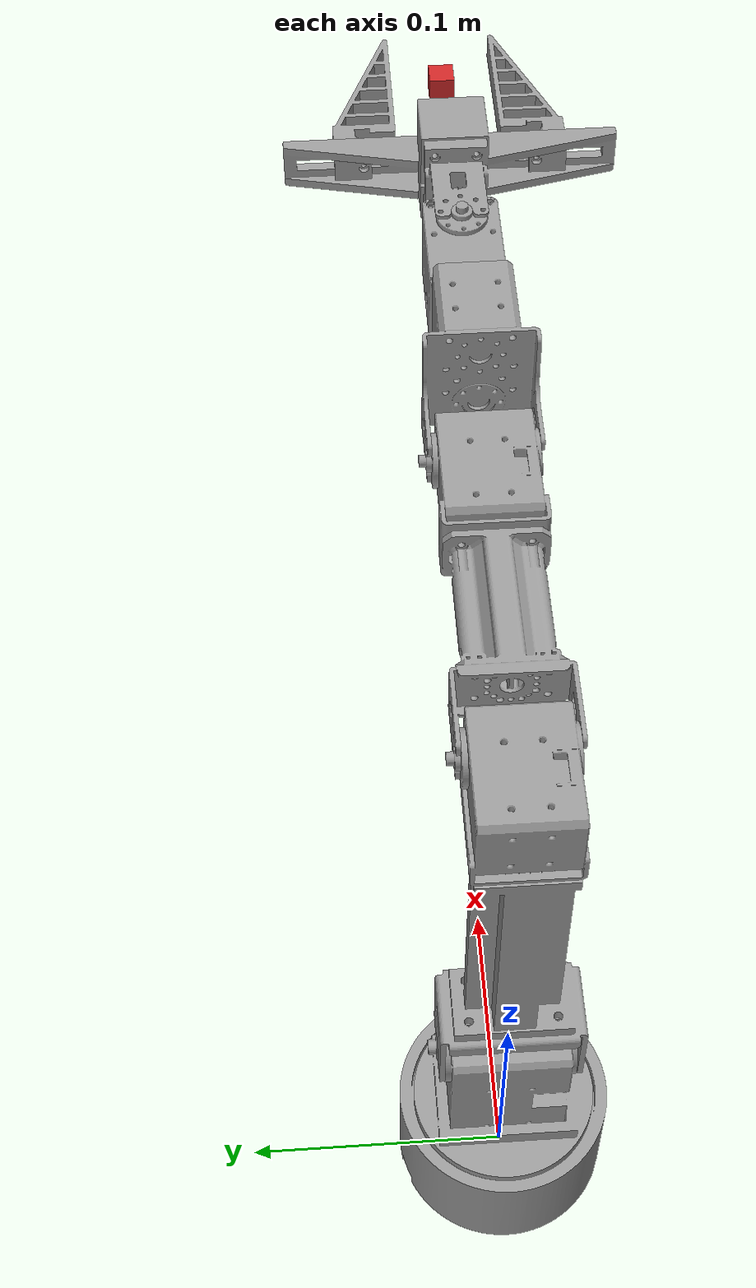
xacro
<?xml version="1.0"?>
<!-- Open_Manipulator Chain -->
<robot xmlns:xacro="http://ros.org/wiki/xacro" name="om">

  <link name="world"/>

  <joint name="world_joint" type="fixed">
    <origin xyz="0 0.0 0.0" rpy="0 0 0"/>
    <parent link="world"/>
    <child link="link1"/>
  </joint>

  <!-- Link 1 -->
  <link name="link1">
    <visual>
      <origin xyz="0 0 0" rpy="0 0 0"/>
      <geometry>
        <mesh filename="package://om_urdf/meshes/stl/chain_link1.stl" scale="0.001 0.001 0.001"/>
      </geometry>
      <material name="grey"/>
    </visual>

    <collision>
      <origin xyz="0 0 0" rpy="0 0 0"/>
      <geometry>
        <mesh filename="package://om_urdf/meshes/stl/chain_link1.stl" scale="0.001 0.001 0.001"/>
      </geometry>
    </collision>

    <inertial>
      <origin xyz="3.0876154e-04 0.0000000e+00 -1.2176461e-04" />
      <mass value="7.9119962e-02" />
      <inertia ixx="1.2505234e-05" ixy="0.0" ixz="-1.7855208e-07"
               iyy="2.1898364e-05" iyz="0.0"
               izz="1.9267361e-05" />
    </inertial>
  </link>

  <!-- Joint 1 -->
  <joint name="joint1" type="revolute">
    <parent link="link1"/>
    <child link="link2"/>
    <origin xyz="0.0 0.0 0.036" rpy="0 0 0"/>
    <axis xyz="0 0 1"/>
    <limit velocity="4.8" effort="1" lower="${-pi*0.9}" upper="${pi*0.9}" />
  </joint>

  <!--  Link 2 -->
  <link name="link2">
    <visual>
      <origin xyz="0 0 0.0" rpy="0 0 0"/>
      <geometry>
        <mesh filename="package://om_urdf/meshes/stl/chain_link2.stl" scale="0.001 0.001 0.001"/>
      </geometry>
      <material name="grey"/>
    </visual>

    <collision>
      <origin xyz="0 0 0.0" rpy="0 0 0"/>
      <geometry>
        <mesh filename="package://om_urdf/meshes/stl/chain_link2.stl" scale="0.001 0.001 0.001"/>
      </geometry>
    </collision>

    <inertial>
      <origin xyz="-3.0184870e-04 5.4043684e-04 ${0.018 + 2.9433464e-02}" />
      <mass value="9.8406837e-02" />
      <inertia ixx="3.4543422e-05" ixy="-1.6031095e-08" ixz="-3.8375155e-07"
               iyy="3.2689329e-05" iyz="2.8511935e-08"
               izz="1.8850320e-05" />
    </inertial>
  </link>

  <!--  Joint 2 -->
  <joint name="joint2" type="revolute">
    <parent link="link2"/>
    <child link="link3"/>
    <origin xyz="0.0 0.0 0.05675" rpy="0 0 0"/>
    <axis xyz="0 1 0"/>
    <limit velocity="4.8" effort="1" lower="${-pi*0.57}" upper="${pi*0.5}" />
  </joint>

  <!--  Link 3 -->
  <link name="link3">
    <visual>
      <origin xyz="0 0 0" rpy="0 0 0"/>
      <geometry>
        <mesh filename="package://om_urdf/meshes/stl/chain_link3.stl" scale="0.001 0.001 0.001"/>
      </geometry>
      <material name="grey"/>
    </visual>

    <collision>
      <origin xyz="0 0 0" rpy="0 0 0"/>
      <geometry>
        <mesh filename="package://om_urdf/meshes/stl/chain_link3.stl" scale="0.001 0.001 0.001"/>
      </geometry>
    </collision>

    <inertial>
      <origin xyz="1.0308393e-02 3.7743363e-04 1.0170197e-01" />
      <mass value="1.3850917e-01" />
      <inertia ixx="3.3055381e-04" ixy="-9.7940978e-08" ixz="-3.8505711e-05"
               iyy="3.4290447e-04" iyz="-1.5717516e-06"
               izz="6.0346498e-05" />
    </inertial>
  </link>

  <!--  Joint 3 -->
  <joint name="joint3" type="revolute">
    <parent link="link3"/>
    <child link="link4"/>
    <origin xyz="0.024 0 0.161714" rpy="0 0 0"/>
    <axis xyz="0 1 0"/>
    <limit velocity="4.8" effort="1" lower="${-pi*0.57}" upper="${pi*0.44}" />
  </joint>

  <!--  Link 4 -->
  <link name="link4">
    <visual>
      <origin xyz="0 0 0" rpy="0 0 0"/>
      <geometry>
        <mesh filename="package://om_urdf/meshes/stl/chain_link4.stl" scale="0.001 0.001 0.001"/>
      </geometry>
      <material name="grey"/>
    </visual>

    <collision>
      <origin xyz="0 0 0" rpy="0 0 0"/>
      <geometry>
        <mesh filename="package://om_urdf/meshes/stl/chain_link4.stl" scale="0.001 0.001 0.001"/>
      </geometry>
    </collision>

    <inertial>
      <origin xyz="9.0909590e-02 3.8929816e-04 2.2413279e-04" />
      <mass value="1.3274562e-01" />
      <inertia ixx="3.0654178e-05" ixy="-1.2764155e-06" ixz="-2.6874417e-07"
               iyy="2.4230292e-04" iyz="1.1559550e-08"
               izz="2.5155057e-04" />
    </inertial>
  </link>

  <!--  Joint 4 -->
  <joint name="joint4" type="revolute">
    <parent link="link4"/>
    <child link="link5"/>
    <origin xyz="0.1235 0.0 0.0" rpy="0 0 0"/>
    <axis xyz="0 1 0"/>
    <limit velocity="4.8" effort="1" lower="${-pi*0.57}" upper="${pi*0.65}" />
  </joint>

  <!--  Link 5 -->
  <link name="link5">
    <visual>
      <origin xyz="0 0 0" rpy="0 0 0"/>
      <geometry>
        <mesh filename="package://om_urdf/meshes/stl/chain_link5.stl" scale="0.001 0.001 0.001"/>
      </geometry>
      <material name="grey"/>
    </visual>

    <collision>
      <origin xyz="0 0 0" rpy="0 0 0"/>
      <geometry>
        <mesh filename="package://om_urdf/meshes/stl/chain_link5.stl" scale="0.001 0.001 0.001"/>
      </geometry>
    </collision>

    <inertial>
      <origin xyz="0 0 0" />
      <mass value="1.0e-03" />
      <inertia ixx="1.0e-03" ixy="0.0" ixz="0.0"
               iyy="1.0e-03" iyz="0.0"
               izz="1.0e-03" />
    </inertial>
  </link>

  <!--  Joint 5 -->
  <joint name="joint5" type="revolute">
    <parent link="link5"/>
    <child link="link6"/>
    <origin xyz="0.064 0.0 0.0" rpy="0 0 0"/>
    <axis xyz="1 0 0"/>
    <limit velocity="4.8" effort="1" lower="${-pi}" upper="${pi}" />
  </joint>

  <!--  Link 6 -->
  <link name="link6">
    <visual>
      <origin xyz="0 0 0" rpy="0 0 0"/>
      <geometry>
        <mesh filename="package://om_urdf/meshes/stl/chain_link6.stl" scale="0.001 0.001 0.001"/>
      </geometry>
      <material name="grey"/>
    </visual>

    <collision>
      <origin xyz="0 0 0" rpy="0 0 0"/>
      <geometry>
        <mesh filename="package://om_urdf/meshes/stl/chain_link6.stl" scale="0.001 0.001 0.001"/>
      </geometry>
    </collision>

    <inertial>
      <origin xyz="0 0 0" />
      <mass value="1.0e-03" />
      <inertia ixx="1.0e-03" ixy="0.0" ixz="0.0"
               iyy="1.0e-03" iyz="0.0"
               izz="1.0e-03" />
    </inertial>
  </link>

  <!--  Joint 6 -->
  <joint name="joint6" type="revolute">
    <parent link="link6"/>
    <child link="link7"/>
    <origin xyz="0.0405 0.0 0.0" rpy="0 0 0"/>
    <axis xyz="0 0 1"/>
    <limit velocity="4.8" effort="1" lower="${-pi*0.57}" upper="${pi*0.57}" />
  </joint>

  <!--  Link 7 -->
  <link name="link7">
    <visual>
      <origin xyz="0 0 0" rpy="0 0 0"/>
      <geometry>
        <mesh filename="package://om_urdf/meshes/stl/chain_link7_without_grippers.stl" scale="0.001 0.001 0.001"/>
      </geometry>
      <material name="grey"/>
    </visual>

    <collision>
      <origin xyz="0 0 0" rpy="0 0 0"/>
      <geometry>
        <mesh filename="package://om_urdf/meshes/stl/chain_link7_without_grippers.stl" scale="0.001 0.001 0.001"/>
      </geometry>
    </collision>

    <inertial>
      <origin xyz="0 0 0" />
      <mass value="1.0e-03" />
      <inertia ixx="1.0e-03" ixy="0.0" ixz="0.0"
               iyy="1.0e-03" iyz="0.0"
               izz="1.0e-03" />
    </inertial>
  </link>

  <!--  Gripper joint -->
  <joint name="gripper" type="prismatic">
    <parent link="link7"/>
    <child link="gripper_link"/>
    <origin xyz="0.059 0.021 0.0" rpy="0 0 0"/>
    <axis xyz="0 1 0"/>
    <limit velocity="4.8" effort="1" lower="-0.010" upper="0.019" />
  </joint>

  <!--  Gripper link -->
  <link name="gripper_link">
    <visual>
      <origin xyz="0.0 0.0 0" rpy="0 0 0"/>
      <geometry>
        <mesh filename="package://om_urdf/meshes/stl/chain_link_grip_l.stl" scale="0.001 0.001 0.001"/>
      </geometry>
      <material name="grey"/>
    </visual>

    <collision>
      <origin xyz="0.0 0.0 0" rpy="0 0 0"/>
      <geometry>
        <mesh filename="package://om_urdf/meshes/stl/chain_link_grip_l.stl" scale="0.001 0.001 0.001"/>
      </geometry>
    </collision>

    <inertial>
      <origin xyz="0 0 0" />
      <mass value="1.0e-03" />
      <inertia ixx="1.0e-03" ixy="0.0" ixz="0.0"
               iyy="1.0e-03" iyz="0.0"
               izz="1.0e-03" />
    </inertial>
  </link>

  <!--  Gripper joint sub -->
  <joint name="gripper_sub" type="prismatic">
    <parent link="link7"/>
    <child link="gripper_link_sub"/>
    <origin xyz="0.059 -0.021 0" rpy="0 0 0"/>
    <axis xyz="0 -1 0"/>
    <limit velocity="4.8" effort="1" lower="-0.010" upper="0.019" />
    <mimic joint="gripper" multiplier="1"/>
  </joint>

  <!--  Gripper link sub -->
  <link name="gripper_link_sub">
    <visual>
      <origin xyz="0.0 -0.0 0" rpy="0 0 0"/>
      <geometry>
        <mesh filename="package://om_urdf/meshes/stl/chain_link_grip_r.stl" scale="0.001 0.001 0.001"/>
      </geometry>
      <material name="grey"/>
    </visual>

    <collision>
      <origin xyz="0.0 -0.0 0" rpy="0 0 0"/>
      <geometry>
        <mesh filename="package://om_urdf/meshes/stl/chain_link_grip_r.stl" scale="0.001 0.001 0.001"/>
      </geometry>
    </collision>

    <inertial>
      <origin xyz="0 0 0" />
      <mass value="1.0e-03" />
      <inertia ixx="1.0e-03" ixy="0.0" ixz="0.0"
               iyy="1.0e-03" iyz="0.0"
               izz="1.0e-03" />
    </inertial>
  </link>

  <!-- end effector joint -->
  <joint name="end_effector_joint" type="fixed">
    <origin xyz="0.1 0.0 0.0" rpy="0 0 0"/>
    <parent link="link7"/>
    <child link="end_effector_link"/>
  </joint>

  <!-- end effector link -->
  <link name="end_effector_link">
    <visual>
      <origin xyz="0 0 0" rpy="0 0 0"/>
      <geometry>
        <box size="0.01 0.01 0.01" />
      </geometry>
      <material name="red"/>
     </visual>

    <inertial>
      <origin xyz="0 0 0" />
      <mass value="1.0e-03" />
      <inertia ixx="1.0e-03" ixy="0.0" ixz="0.0"
               iyy="1.0e-03" iyz="0.0"
               izz="1.0e-03" />
    </inertial>
  </link>

</robot>
